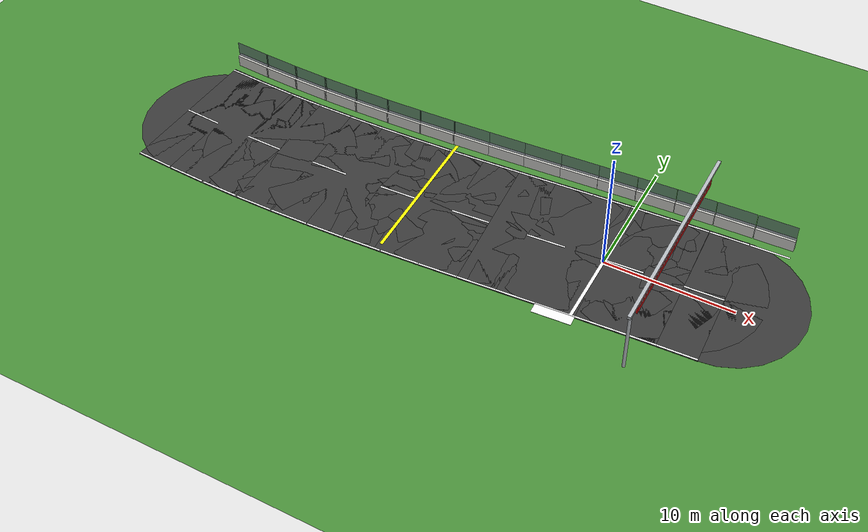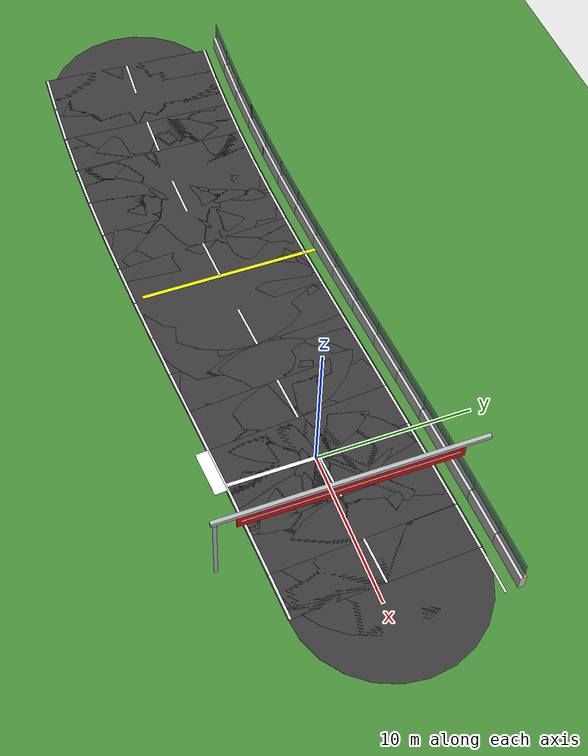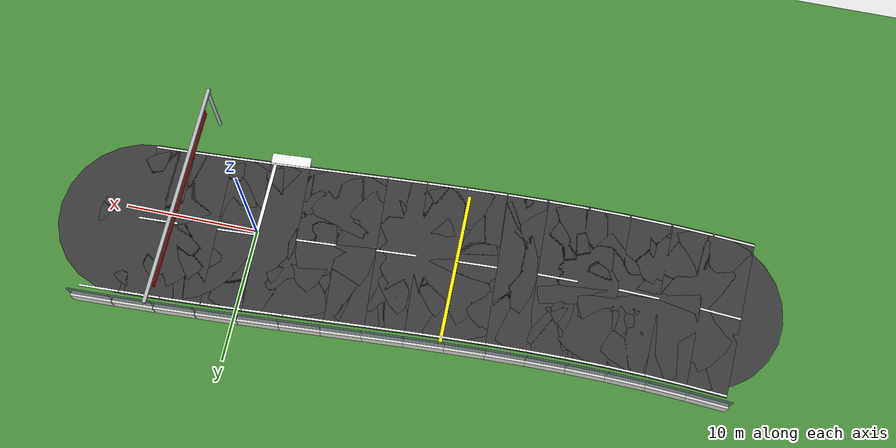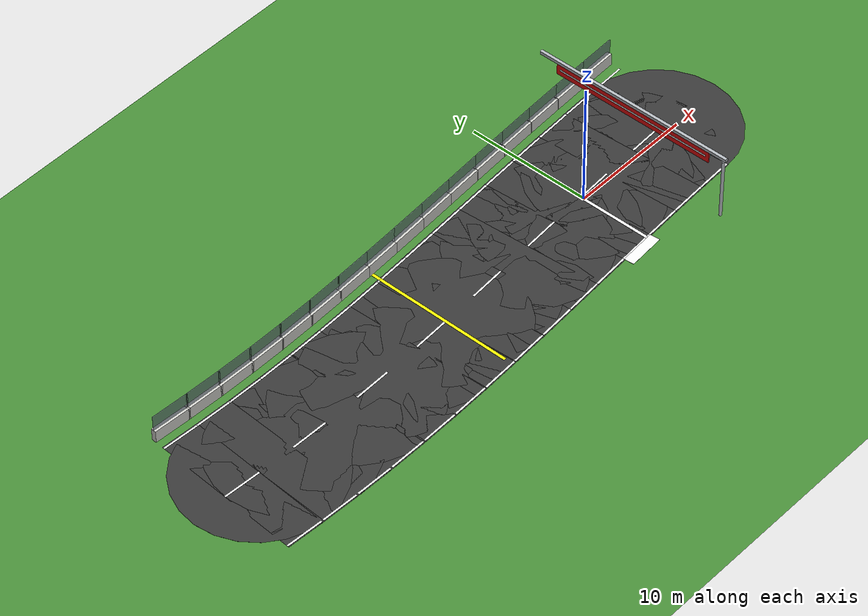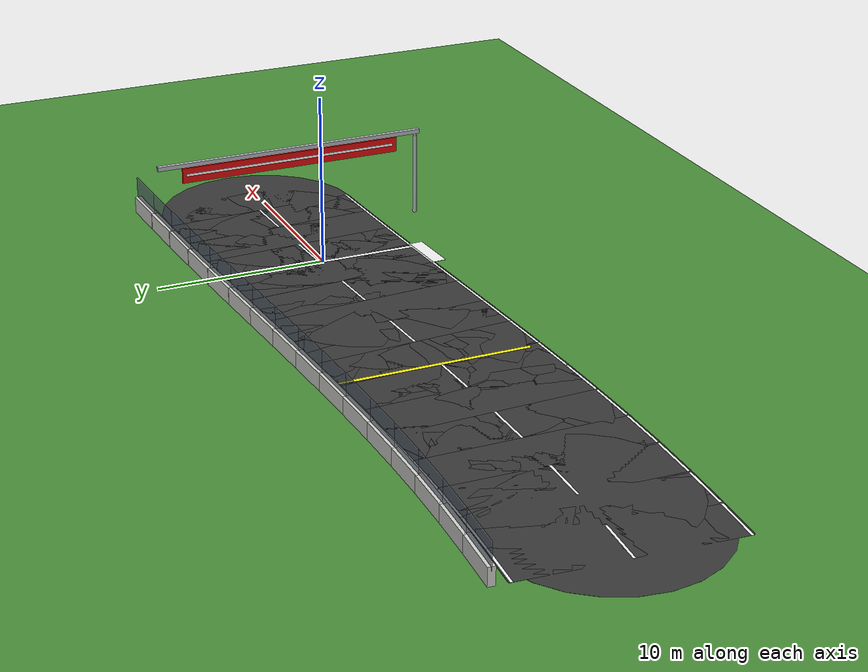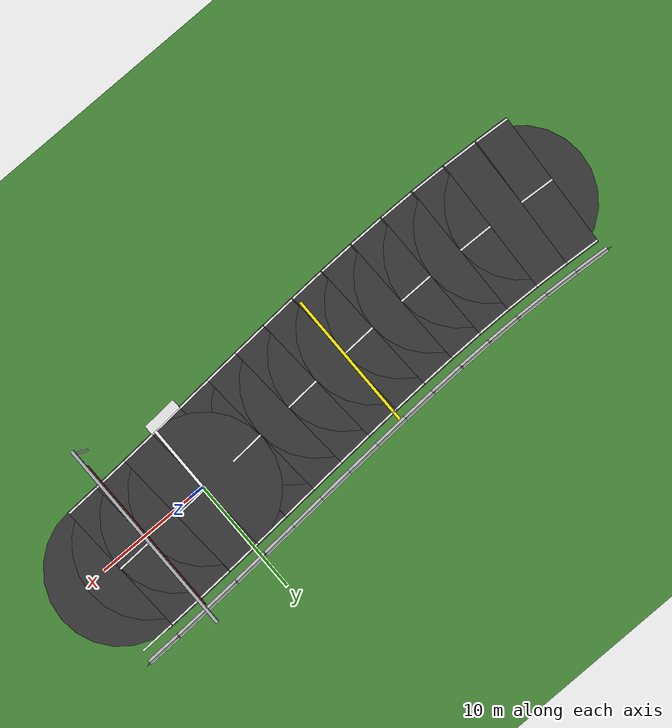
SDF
<sdf version="1.6">
 <world name="sem_silesia_ring_2026">
  <model name="ground_plane">
   <static>true</static>
   <link name="link">
    <collision name="collision">
     <geometry><plane><normal>0 0 1</normal><size>1200 1200</size></plane></geometry>
     <surface><friction><ode><mu>0.6</mu><mu2>0.6</mu2></ode></friction></surface>
    </collision>
    <visual name="visual">
     <geometry><plane><normal>0 0 1</normal><size>1200 1200</size></plane></geometry>
     <material><ambient>0.28 0.55 0.22 1</ambient><diffuse>0.28 0.55 0.22 1</diffuse></material>
    </visual>
   </link>
  </model>
  <model name="road_s0">
   <static>true</static>
   <pose>1.4680 0.3103 0.0030 0 0 0.0594</pose>
   <link name="link">
    <visual name="v">
     <geometry><box><size>3.0025 12.0000 0.0060</size></box></geometry>
     <material><ambient>0.22 0.22 0.22 1</ambient><diffuse>0.22 0.22 0.22 1</diffuse></material>
    </visual>
    <collision name="c">
     <geometry><box><size>3.0025 12.0000 0.0060</size></box></geometry>
     <surface><friction><ode><mu>0.9</mu><mu2>0.9</mu2></ode></friction></surface>
    </collision>
   </link>
  </model>
  <model name="road_jnt0">
   <static>true</static>
   <pose>-0.0306 0.2212 0.0030 0 0 0</pose>
   <link name="link">
    <visual name="v">
     <geometry><cylinder><radius>6.0000</radius><length>0.0060</length></cylinder></geometry>
     <material><ambient>0.22 0.22 0.22 1</ambient><diffuse>0.22 0.22 0.22 1</diffuse></material>
    </visual>
    <collision name="c">
     <geometry><cylinder><radius>6.0000</radius><length>0.0060</length></cylinder></geometry>
     <surface><friction><ode><mu>0.9</mu><mu2>0.9</mu2></ode></friction></surface>
    </collision>
   </link>
  </model>
  <model name="wl_L_s0">
   <static>true</static>
   <pose>1.1208 6.1500 0.0070 0 0 0.0594</pose>
   <link name="link">
    <visual name="v">
     <geometry><box><size>3.0025 0.1500 0.0080</size></box></geometry>
     <material><ambient>0.95 0.95 0.95 1</ambient><diffuse>0.95 0.95 0.95 1</diffuse></material>
    </visual>
   </link>
  </model>
  <model name="wl_R_s0">
   <static>true</static>
   <pose>1.8152 -5.5294 0.0070 0 0 0.0594</pose>
   <link name="link">
    <visual name="v">
     <geometry><box><size>3.0025 0.1500 0.0080</size></box></geometry>
     <material><ambient>0.95 0.95 0.95 1</ambient><diffuse>0.95 0.95 0.95 1</diffuse></material>
    </visual>
   </link>
  </model>
  <model name="cd_s0">
   <static>true</static>
   <pose>1.4680 0.3103 0.0070 0 0 0.0594</pose>
   <link name="link">
    <visual name="v">
     <geometry><box><size>3.0025 0.1500 0.0080</size></box></geometry>
     <material><ambient>0.95 0.95 0.95 1</ambient><diffuse>0.95 0.95 0.95 1</diffuse></material>
    </visual>
   </link>
  </model>
  <model name="road_s1">
   <static>true</static>
   <pose>4.4658 0.4782 0.0030 0 0 0.0526</pose>
   <link name="link">
    <visual name="v">
     <geometry><box><size>3.0025 12.0000 0.0060</size></box></geometry>
     <material><ambient>0.22 0.22 0.22 1</ambient><diffuse>0.22 0.22 0.22 1</diffuse></material>
    </visual>
    <collision name="c">
     <geometry><box><size>3.0025 12.0000 0.0060</size></box></geometry>
     <surface><friction><ode><mu>0.9</mu><mu2>0.9</mu2></ode></friction></surface>
    </collision>
   </link>
  </model>
  <model name="road_jnt1">
   <static>true</static>
   <pose>2.9666 0.3994 0.0030 0 0 0</pose>
   <link name="link">
    <visual name="v">
     <geometry><cylinder><radius>6.0000</radius><length>0.0060</length></cylinder></geometry>
     <material><ambient>0.22 0.22 0.22 1</ambient><diffuse>0.22 0.22 0.22 1</diffuse></material>
    </visual>
    <collision name="c">
     <geometry><cylinder><radius>6.0000</radius><length>0.0060</length></cylinder></geometry>
     <surface><friction><ode><mu>0.9</mu><mu2>0.9</mu2></ode></friction></surface>
    </collision>
   </link>
  </model>
  <model name="wl_L_s1">
   <static>true</static>
   <pose>4.1585 6.3202 0.0070 0 0 0.0526</pose>
   <link name="link">
    <visual name="v">
     <geometry><box><size>3.0025 0.1500 0.0080</size></box></geometry>
     <material><ambient>0.95 0.95 0.95 1</ambient><diffuse>0.95 0.95 0.95 1</diffuse></material>
    </visual>
   </link>
  </model>
  <model name="wl_R_s1">
   <static>true</static>
   <pose>4.7732 -5.3637 0.0070 0 0 0.0526</pose>
   <link name="link">
    <visual name="v">
     <geometry><box><size>3.0025 0.1500 0.0080</size></box></geometry>
     <material><ambient>0.95 0.95 0.95 1</ambient><diffuse>0.95 0.95 0.95 1</diffuse></material>
    </visual>
   </link>
  </model>
  <model name="road_s2">
   <static>true</static>
   <pose>7.4648 0.6246 0.0030 0 0 0.0450</pose>
   <link name="link">
    <visual name="v">
     <geometry><box><size>3.0025 12.0000 0.0060</size></box></geometry>
     <material><ambient>0.22 0.22 0.22 1</ambient><diffuse>0.22 0.22 0.22 1</diffuse></material>
    </visual>
    <collision name="c">
     <geometry><box><size>3.0025 12.0000 0.0060</size></box></geometry>
     <surface><friction><ode><mu>0.9</mu><mu2>0.9</mu2></ode></friction></surface>
    </collision>
   </link>
  </model>
  <model name="road_jnt2">
   <static>true</static>
   <pose>5.9650 0.5571 0.0030 0 0 0</pose>
   <link name="link">
    <visual name="v">
     <geometry><cylinder><radius>6.0000</radius><length>0.0060</length></cylinder></geometry>
     <material><ambient>0.22 0.22 0.22 1</ambient><diffuse>0.22 0.22 0.22 1</diffuse></material>
    </visual>
    <collision name="c">
     <geometry><cylinder><radius>6.0000</radius><length>0.0060</length></cylinder></geometry>
     <surface><friction><ode><mu>0.9</mu><mu2>0.9</mu2></ode></friction></surface>
    </collision>
   </link>
  </model>
  <model name="wl_L_s2">
   <static>true</static>
   <pose>7.2018 6.4687 0.0070 0 0 0.0450</pose>
   <link name="link">
    <visual name="v">
     <geometry><box><size>3.0025 0.1500 0.0080</size></box></geometry>
     <material><ambient>0.95 0.95 0.95 1</ambient><diffuse>0.95 0.95 0.95 1</diffuse></material>
    </visual>
   </link>
  </model>
  <model name="wl_R_s2">
   <static>true</static>
   <pose>7.7277 -5.2195 0.0070 0 0 0.0450</pose>
   <link name="link">
    <visual name="v">
     <geometry><box><size>3.0025 0.1500 0.0080</size></box></geometry>
     <material><ambient>0.95 0.95 0.95 1</ambient><diffuse>0.95 0.95 0.95 1</diffuse></material>
    </visual>
   </link>
  </model>
  <model name="cd_s2">
   <static>true</static>
   <pose>7.4648 0.6246 0.0070 0 0 0.0450</pose>
   <link name="link">
    <visual name="v">
     <geometry><box><size>3.0025 0.1500 0.0080</size></box></geometry>
     <material><ambient>0.95 0.95 0.95 1</ambient><diffuse>0.95 0.95 0.95 1</diffuse></material>
    </visual>
   </link>
  </model>
  <model name="road_jnt3">
   <static>true</static>
   <pose>8.9645 0.6921 0.0030 0 0 0</pose>
   <link name="link">
    <visual name="v">
     <geometry><cylinder><radius>6.0000</radius><length>0.0060</length></cylinder></geometry>
     <material><ambient>0.22 0.22 0.22 1</ambient><diffuse>0.22 0.22 0.22 1</diffuse></material>
    </visual>
    <collision name="c">
     <geometry><cylinder><radius>6.0000</radius><length>0.0060</length></cylinder></geometry>
     <surface><friction><ode><mu>0.9</mu><mu2>0.9</mu2></ode></friction></surface>
    </collision>
   </link>
  </model>
  <model name="wl_L_s3">
   <static>true</static>
   <pose>10.2509 6.5931 0.0070 0 0 0.0366</pose>
   <link name="link">
    <visual name="v">
     <geometry><box><size>3.0025 0.1500 0.0080</size></box></geometry>
     <material><ambient>0.95 0.95 0.95 1</ambient><diffuse>0.95 0.95 0.95 1</diffuse></material>
    </visual>
   </link>
  </model>
  <model name="road_s428">
   <static>true</static>
   <pose>-34.5154 -0.7062 0.0030 0 0 -0.0658</pose>
   <link name="link">
    <visual name="v">
     <geometry><box><size>3.0025 12.0000 0.0060</size></box></geometry>
     <material><ambient>0.22 0.22 0.22 1</ambient><diffuse>0.22 0.22 0.22 1</diffuse></material>
    </visual>
    <collision name="c">
     <geometry><box><size>3.0025 12.0000 0.0060</size></box></geometry>
     <surface><friction><ode><mu>0.9</mu><mu2>0.9</mu2></ode></friction></surface>
    </collision>
   </link>
  </model>
  <model name="wl_L_s428">
   <static>true</static>
   <pose>-34.1307 5.1311 0.0070 0 0 -0.0658</pose>
   <link name="link">
    <visual name="v">
     <geometry><box><size>3.0025 0.1500 0.0080</size></box></geometry>
     <material><ambient>0.95 0.95 0.95 1</ambient><diffuse>0.95 0.95 0.95 1</diffuse></material>
    </visual>
   </link>
  </model>
  <model name="wl_R_s428">
   <static>true</static>
   <pose>-34.9000 -6.5436 0.0070 0 0 -0.0658</pose>
   <link name="link">
    <visual name="v">
     <geometry><box><size>3.0025 0.1500 0.0080</size></box></geometry>
     <material><ambient>0.95 0.95 0.95 1</ambient><diffuse>0.95 0.95 0.95 1</diffuse></material>
    </visual>
   </link>
  </model>
  <model name="cd_s428">
   <static>true</static>
   <pose>-34.5154 -0.7062 0.0070 0 0 -0.0658</pose>
   <link name="link">
    <visual name="v">
     <geometry><box><size>3.0025 0.1500 0.0080</size></box></geometry>
     <material><ambient>0.95 0.95 0.95 1</ambient><diffuse>0.95 0.95 0.95 1</diffuse></material>
    </visual>
   </link>
  </model>
  <model name="road_s429">
   <static>true</static>
   <pose>-31.5178 -0.8765 0.0030 0 0 -0.0477</pose>
   <link name="link">
    <visual name="v">
     <geometry><box><size>3.0025 12.0000 0.0060</size></box></geometry>
     <material><ambient>0.22 0.22 0.22 1</ambient><diffuse>0.22 0.22 0.22 1</diffuse></material>
    </visual>
    <collision name="c">
     <geometry><box><size>3.0025 12.0000 0.0060</size></box></geometry>
     <surface><friction><ode><mu>0.9</mu><mu2>0.9</mu2></ode></friction></surface>
    </collision>
   </link>
  </model>
  <model name="road_jnt429">
   <static>true</static>
   <pose>-33.0174 -0.8050 0.0030 0 0 0</pose>
   <link name="link">
    <visual name="v">
     <geometry><cylinder><radius>6.0000</radius><length>0.0060</length></cylinder></geometry>
     <material><ambient>0.22 0.22 0.22 1</ambient><diffuse>0.22 0.22 0.22 1</diffuse></material>
    </visual>
    <collision name="c">
     <geometry><cylinder><radius>6.0000</radius><length>0.0060</length></cylinder></geometry>
     <surface><friction><ode><mu>0.9</mu><mu2>0.9</mu2></ode></friction></surface>
    </collision>
   </link>
  </model>
  <model name="wl_L_s429">
   <static>true</static>
   <pose>-31.2392 4.9669 0.0070 0 0 -0.0477</pose>
   <link name="link">
    <visual name="v">
     <geometry><box><size>3.0025 0.1500 0.0080</size></box></geometry>
     <material><ambient>0.95 0.95 0.95 1</ambient><diffuse>0.95 0.95 0.95 1</diffuse></material>
    </visual>
   </link>
  </model>
  <model name="wl_R_s429">
   <static>true</static>
   <pose>-31.7965 -6.7198 0.0070 0 0 -0.0477</pose>
   <link name="link">
    <visual name="v">
     <geometry><box><size>3.0025 0.1500 0.0080</size></box></geometry>
     <material><ambient>0.95 0.95 0.95 1</ambient><diffuse>0.95 0.95 0.95 1</diffuse></material>
    </visual>
   </link>
  </model>
  <model name="road_s430">
   <static>true</static>
   <pose>-28.5176 -0.9865 0.0030 0 0 -0.0257</pose>
   <link name="link">
    <visual name="v">
     <geometry><box><size>3.0025 12.0000 0.0060</size></box></geometry>
     <material><ambient>0.22 0.22 0.22 1</ambient><diffuse>0.22 0.22 0.22 1</diffuse></material>
    </visual>
    <collision name="c">
     <geometry><box><size>3.0025 12.0000 0.0060</size></box></geometry>
     <surface><friction><ode><mu>0.9</mu><mu2>0.9</mu2></ode></friction></surface>
    </collision>
   </link>
  </model>
  <model name="road_jnt430">
   <static>true</static>
   <pose>-30.0183 -0.9480 0.0030 0 0 0</pose>
   <link name="link">
    <visual name="v">
     <geometry><cylinder><radius>6.0000</radius><length>0.0060</length></cylinder></geometry>
     <material><ambient>0.22 0.22 0.22 1</ambient><diffuse>0.22 0.22 0.22 1</diffuse></material>
    </visual>
    <collision name="c">
     <geometry><cylinder><radius>6.0000</radius><length>0.0060</length></cylinder></geometry>
     <surface><friction><ode><mu>0.9</mu><mu2>0.9</mu2></ode></friction></surface>
    </collision>
   </link>
  </model>
  <model name="wl_L_s430">
   <static>true</static>
   <pose>-28.3675 4.8616 0.0070 0 0 -0.0257</pose>
   <link name="link">
    <visual name="v">
     <geometry><box><size>3.0025 0.1500 0.0080</size></box></geometry>
     <material><ambient>0.95 0.95 0.95 1</ambient><diffuse>0.95 0.95 0.95 1</diffuse></material>
    </visual>
   </link>
  </model>
  <model name="wl_R_s430">
   <static>true</static>
   <pose>-28.6677 -6.8346 0.0070 0 0 -0.0257</pose>
   <link name="link">
    <visual name="v">
     <geometry><box><size>3.0025 0.1500 0.0080</size></box></geometry>
     <material><ambient>0.95 0.95 0.95 1</ambient><diffuse>0.95 0.95 0.95 1</diffuse></material>
    </visual>
   </link>
  </model>
  <model name="cd_s430">
   <static>true</static>
   <pose>-28.5176 -0.9865 0.0070 0 0 -0.0257</pose>
   <link name="link">
    <visual name="v">
     <geometry><box><size>3.0025 0.1500 0.0080</size></box></geometry>
     <material><ambient>0.95 0.95 0.95 1</ambient><diffuse>0.95 0.95 0.95 1</diffuse></material>
    </visual>
   </link>
  </model>
  <model name="road_s431">
   <static>true</static>
   <pose>-25.5156 -1.0294 0.0030 0 0 -0.0029</pose>
   <link name="link">
    <visual name="v">
     <geometry><box><size>3.0025 12.0000 0.0060</size></box></geometry>
     <material><ambient>0.22 0.22 0.22 1</ambient><diffuse>0.22 0.22 0.22 1</diffuse></material>
    </visual>
    <collision name="c">
     <geometry><box><size>3.0025 12.0000 0.0060</size></box></geometry>
     <surface><friction><ode><mu>0.9</mu><mu2>0.9</mu2></ode></friction></surface>
    </collision>
   </link>
  </model>
  <model name="road_jnt431">
   <static>true</static>
   <pose>-27.0168 -1.0250 0.0030 0 0 0</pose>
   <link name="link">
    <visual name="v">
     <geometry><cylinder><radius>6.0000</radius><length>0.0060</length></cylinder></geometry>
     <material><ambient>0.22 0.22 0.22 1</ambient><diffuse>0.22 0.22 0.22 1</diffuse></material>
    </visual>
    <collision name="c">
     <geometry><cylinder><radius>6.0000</radius><length>0.0060</length></cylinder></geometry>
     <surface><friction><ode><mu>0.9</mu><mu2>0.9</mu2></ode></friction></surface>
    </collision>
   </link>
  </model>
  <model name="wl_L_s431">
   <static>true</static>
   <pose>-25.4985 4.8206 0.0070 0 0 -0.0029</pose>
   <link name="link">
    <visual name="v">
     <geometry><box><size>3.0025 0.1500 0.0080</size></box></geometry>
     <material><ambient>0.95 0.95 0.95 1</ambient><diffuse>0.95 0.95 0.95 1</diffuse></material>
    </visual>
   </link>
  </model>
  <model name="wl_R_s431">
   <static>true</static>
   <pose>-25.5327 -6.8794 0.0070 0 0 -0.0029</pose>
   <link name="link">
    <visual name="v">
     <geometry><box><size>3.0025 0.1500 0.0080</size></box></geometry>
     <material><ambient>0.95 0.95 0.95 1</ambient><diffuse>0.95 0.95 0.95 1</diffuse></material>
    </visual>
   </link>
  </model>
  <model name="road_s432">
   <static>true</static>
   <pose>-22.5133 -1.0085 0.0030 0 0 0.0169</pose>
   <link name="link">
    <visual name="v">
     <geometry><box><size>3.0025 12.0000 0.0060</size></box></geometry>
     <material><ambient>0.22 0.22 0.22 1</ambient><diffuse>0.22 0.22 0.22 1</diffuse></material>
    </visual>
    <collision name="c">
     <geometry><box><size>3.0025 12.0000 0.0060</size></box></geometry>
     <surface><friction><ode><mu>0.9</mu><mu2>0.9</mu2></ode></friction></surface>
    </collision>
   </link>
  </model>
  <model name="road_jnt432">
   <static>true</static>
   <pose>-24.0144 -1.0338 0.0030 0 0 0</pose>
   <link name="link">
    <visual name="v">
     <geometry><cylinder><radius>6.0000</radius><length>0.0060</length></cylinder></geometry>
     <material><ambient>0.22 0.22 0.22 1</ambient><diffuse>0.22 0.22 0.22 1</diffuse></material>
    </visual>
    <collision name="c">
     <geometry><cylinder><radius>6.0000</radius><length>0.0060</length></cylinder></geometry>
     <surface><friction><ode><mu>0.9</mu><mu2>0.9</mu2></ode></friction></surface>
    </collision>
   </link>
  </model>
  <model name="wl_L_s432">
   <static>true</static>
   <pose>-22.6120 4.8407 0.0070 0 0 0.0169</pose>
   <link name="link">
    <visual name="v">
     <geometry><box><size>3.0025 0.1500 0.0080</size></box></geometry>
     <material><ambient>0.95 0.95 0.95 1</ambient><diffuse>0.95 0.95 0.95 1</diffuse></material>
    </visual>
   </link>
  </model>
  <model name="wl_R_s432">
   <static>true</static>
   <pose>-22.4146 -6.8576 0.0070 0 0 0.0169</pose>
   <link name="link">
    <visual name="v">
     <geometry><box><size>3.0025 0.1500 0.0080</size></box></geometry>
     <material><ambient>0.95 0.95 0.95 1</ambient><diffuse>0.95 0.95 0.95 1</diffuse></material>
    </visual>
   </link>
  </model>
  <model name="cd_s432">
   <static>true</static>
   <pose>-22.5133 -1.0085 0.0070 0 0 0.0169</pose>
   <link name="link">
    <visual name="v">
     <geometry><box><size>3.0025 0.1500 0.0080</size></box></geometry>
     <material><ambient>0.95 0.95 0.95 1</ambient><diffuse>0.95 0.95 0.95 1</diffuse></material>
    </visual>
   </link>
  </model>
  <model name="road_s433">
   <static>true</static>
   <pose>-19.5119 -0.9329 0.0030 0 0 0.0335</pose>
   <link name="link">
    <visual name="v">
     <geometry><box><size>3.0025 12.0000 0.0060</size></box></geometry>
     <material><ambient>0.22 0.22 0.22 1</ambient><diffuse>0.22 0.22 0.22 1</diffuse></material>
    </visual>
    <collision name="c">
     <geometry><box><size>3.0025 12.0000 0.0060</size></box></geometry>
     <surface><friction><ode><mu>0.9</mu><mu2>0.9</mu2></ode></friction></surface>
    </collision>
   </link>
  </model>
  <model name="road_jnt433">
   <static>true</static>
   <pose>-21.0123 -0.9831 0.0030 0 0 0</pose>
   <link name="link">
    <visual name="v">
     <geometry><cylinder><radius>6.0000</radius><length>0.0060</length></cylinder></geometry>
     <material><ambient>0.22 0.22 0.22 1</ambient><diffuse>0.22 0.22 0.22 1</diffuse></material>
    </visual>
    <collision name="c">
     <geometry><cylinder><radius>6.0000</radius><length>0.0060</length></cylinder></geometry>
     <surface><friction><ode><mu>0.9</mu><mu2>0.9</mu2></ode></friction></surface>
    </collision>
   </link>
  </model>
  <model name="wl_L_s433">
   <static>true</static>
   <pose>-19.7076 4.9138 0.0070 0 0 0.0335</pose>
   <link name="link">
    <visual name="v">
     <geometry><box><size>3.0025 0.1500 0.0080</size></box></geometry>
     <material><ambient>0.95 0.95 0.95 1</ambient><diffuse>0.95 0.95 0.95 1</diffuse></material>
    </visual>
   </link>
  </model>
  <model name="wl_R_s433">
   <static>true</static>
   <pose>-19.3161 -6.7796 0.0070 0 0 0.0335</pose>
   <link name="link">
    <visual name="v">
     <geometry><box><size>3.0025 0.1500 0.0080</size></box></geometry>
     <material><ambient>0.95 0.95 0.95 1</ambient><diffuse>0.95 0.95 0.95 1</diffuse></material>
    </visual>
   </link>
  </model>
  <model name="road_s434">
   <static>true</static>
   <pose>-16.5118 -0.8124 0.0030 0 0 0.0468</pose>
   <link name="link">
    <visual name="v">
     <geometry><box><size>3.0025 12.0000 0.0060</size></box></geometry>
     <material><ambient>0.22 0.22 0.22 1</ambient><diffuse>0.22 0.22 0.22 1</diffuse></material>
    </visual>
    <collision name="c">
     <geometry><box><size>3.0025 12.0000 0.0060</size></box></geometry>
     <surface><friction><ode><mu>0.9</mu><mu2>0.9</mu2></ode></friction></surface>
    </collision>
   </link>
  </model>
  <model name="road_jnt434">
   <static>true</static>
   <pose>-18.0115 -0.8827 0.0030 0 0 0</pose>
   <link name="link">
    <visual name="v">
     <geometry><cylinder><radius>6.0000</radius><length>0.0060</length></cylinder></geometry>
     <material><ambient>0.22 0.22 0.22 1</ambient><diffuse>0.22 0.22 0.22 1</diffuse></material>
    </visual>
    <collision name="c">
     <geometry><cylinder><radius>6.0000</radius><length>0.0060</length></cylinder></geometry>
     <surface><friction><ode><mu>0.9</mu><mu2>0.9</mu2></ode></friction></surface>
    </collision>
   </link>
  </model>
  <model name="wl_L_s434">
   <static>true</static>
   <pose>-16.7857 5.0312 0.0070 0 0 0.0468</pose>
   <link name="link">
    <visual name="v">
     <geometry><box><size>3.0025 0.1500 0.0080</size></box></geometry>
     <material><ambient>0.95 0.95 0.95 1</ambient><diffuse>0.95 0.95 0.95 1</diffuse></material>
    </visual>
   </link>
  </model>
  <model name="wl_R_s434">
   <static>true</static>
   <pose>-16.2380 -6.6560 0.0070 0 0 0.0468</pose>
   <link name="link">
    <visual name="v">
     <geometry><box><size>3.0025 0.1500 0.0080</size></box></geometry>
     <material><ambient>0.95 0.95 0.95 1</ambient><diffuse>0.95 0.95 0.95 1</diffuse></material>
    </visual>
   </link>
  </model>
  <model name="cd_s434">
   <static>true</static>
   <pose>-16.5118 -0.8124 0.0070 0 0 0.0468</pose>
   <link name="link">
    <visual name="v">
     <geometry><box><size>3.0025 0.1500 0.0080</size></box></geometry>
     <material><ambient>0.95 0.95 0.95 1</ambient><diffuse>0.95 0.95 0.95 1</diffuse></material>
    </visual>
   </link>
  </model>
  <model name="road_s435">
   <static>true</static>
   <pose>-13.5134 -0.6567 0.0030 0 0 0.0569</pose>
   <link name="link">
    <visual name="v">
     <geometry><box><size>3.0025 12.0000 0.0060</size></box></geometry>
     <material><ambient>0.22 0.22 0.22 1</ambient><diffuse>0.22 0.22 0.22 1</diffuse></material>
    </visual>
    <collision name="c">
     <geometry><box><size>3.0025 12.0000 0.0060</size></box></geometry>
     <surface><friction><ode><mu>0.9</mu><mu2>0.9</mu2></ode></friction></surface>
    </collision>
   </link>
  </model>
  <model name="road_jnt435">
   <static>true</static>
   <pose>-15.0122 -0.7421 0.0030 0 0 0</pose>
   <link name="link">
    <visual name="v">
     <geometry><cylinder><radius>6.0000</radius><length>0.0060</length></cylinder></geometry>
     <material><ambient>0.22 0.22 0.22 1</ambient><diffuse>0.22 0.22 0.22 1</diffuse></material>
    </visual>
    <collision name="c">
     <geometry><cylinder><radius>6.0000</radius><length>0.0060</length></cylinder></geometry>
     <surface><friction><ode><mu>0.9</mu><mu2>0.9</mu2></ode></friction></surface>
    </collision>
   </link>
  </model>
  <model name="wl_L_s435">
   <static>true</static>
   <pose>-13.8464 5.1838 0.0070 0 0 0.0569</pose>
   <link name="link">
    <visual name="v">
     <geometry><box><size>3.0025 0.1500 0.0080</size></box></geometry>
     <material><ambient>0.95 0.95 0.95 1</ambient><diffuse>0.95 0.95 0.95 1</diffuse></material>
    </visual>
   </link>
  </model>
  <model name="wl_R_s435">
   <static>true</static>
   <pose>-13.1804 -6.4972 0.0070 0 0 0.0569</pose>
   <link name="link">
    <visual name="v">
     <geometry><box><size>3.0025 0.1500 0.0080</size></box></geometry>
     <material><ambient>0.95 0.95 0.95 1</ambient><diffuse>0.95 0.95 0.95 1</diffuse></material>
    </visual>
   </link>
  </model>
  <model name="road_s436">
   <static>true</static>
   <pose>-10.5164 -0.4755 0.0030 0 0 0.0638</pose>
   <link name="link">
    <visual name="v">
     <geometry><box><size>3.0025 12.0000 0.0060</size></box></geometry>
     <material><ambient>0.22 0.22 0.22 1</ambient><diffuse>0.22 0.22 0.22 1</diffuse></material>
    </visual>
    <collision name="c">
     <geometry><box><size>3.0025 12.0000 0.0060</size></box></geometry>
     <surface><friction><ode><mu>0.9</mu><mu2>0.9</mu2></ode></friction></surface>
    </collision>
   </link>
  </model>
  <model name="road_jnt436">
   <static>true</static>
   <pose>-12.0146 -0.5712 0.0030 0 0 0</pose>
   <link name="link">
    <visual name="v">
     <geometry><cylinder><radius>6.0000</radius><length>0.0060</length></cylinder></geometry>
     <material><ambient>0.22 0.22 0.22 1</ambient><diffuse>0.22 0.22 0.22 1</diffuse></material>
    </visual>
    <collision name="c">
     <geometry><cylinder><radius>6.0000</radius><length>0.0060</length></cylinder></geometry>
     <surface><friction><ode><mu>0.9</mu><mu2>0.9</mu2></ode></friction></surface>
    </collision>
   </link>
  </model>
  <model name="wl_L_s436">
   <static>true</static>
   <pose>-10.8894 5.3626 0.0070 0 0 0.0638</pose>
   <link name="link">
    <visual name="v">
     <geometry><box><size>3.0025 0.1500 0.0080</size></box></geometry>
     <material><ambient>0.95 0.95 0.95 1</ambient><diffuse>0.95 0.95 0.95 1</diffuse></material>
    </visual>
   </link>
  </model>
  <model name="wl_R_s436">
   <static>true</static>
   <pose>-10.1433 -6.3136 0.0070 0 0 0.0638</pose>
   <link name="link">
    <visual name="v">
     <geometry><box><size>3.0025 0.1500 0.0080</size></box></geometry>
     <material><ambient>0.95 0.95 0.95 1</ambient><diffuse>0.95 0.95 0.95 1</diffuse></material>
    </visual>
   </link>
  </model>
  <model name="cd_s436">
   <static>true</static>
   <pose>-10.5164 -0.4755 0.0070 0 0 0.0638</pose>
   <link name="link">
    <visual name="v">
     <geometry><box><size>3.0025 0.1500 0.0080</size></box></geometry>
     <material><ambient>0.95 0.95 0.95 1</ambient><diffuse>0.95 0.95 0.95 1</diffuse></material>
    </visual>
   </link>
  </model>
  <model name="road_s437">
   <static>true</static>
   <pose>-7.5203 -0.2786 0.0030 0 0 0.0674</pose>
   <link name="link">
    <visual name="v">
     <geometry><box><size>3.0025 12.0000 0.0060</size></box></geometry>
     <material><ambient>0.22 0.22 0.22 1</ambient><diffuse>0.22 0.22 0.22 1</diffuse></material>
    </visual>
    <collision name="c">
     <geometry><box><size>3.0025 12.0000 0.0060</size></box></geometry>
     <surface><friction><ode><mu>0.9</mu><mu2>0.9</mu2></ode></friction></surface>
    </collision>
   </link>
  </model>
  <model name="road_jnt437">
   <static>true</static>
   <pose>-9.0181 -0.3797 0.0030 0 0 0</pose>
   <link name="link">
    <visual name="v">
     <geometry><cylinder><radius>6.0000</radius><length>0.0060</length></cylinder></geometry>
     <material><ambient>0.22 0.22 0.22 1</ambient><diffuse>0.22 0.22 0.22 1</diffuse></material>
    </visual>
    <collision name="c">
     <geometry><cylinder><radius>6.0000</radius><length>0.0060</length></cylinder></geometry>
     <surface><friction><ode><mu>0.9</mu><mu2>0.9</mu2></ode></friction></surface>
    </collision>
   </link>
  </model>
  <model name="wl_L_s437">
   <static>true</static>
   <pose>-7.9145 5.5581 0.0070 0 0 0.0674</pose>
   <link name="link">
    <visual name="v">
     <geometry><box><size>3.0025 0.1500 0.0080</size></box></geometry>
     <material><ambient>0.95 0.95 0.95 1</ambient><diffuse>0.95 0.95 0.95 1</diffuse></material>
    </visual>
   </link>
  </model>
  <model name="wl_R_s437">
   <static>true</static>
   <pose>-7.1261 -6.1153 0.0070 0 0 0.0674</pose>
   <link name="link">
    <visual name="v">
     <geometry><box><size>3.0025 0.1500 0.0080</size></box></geometry>
     <material><ambient>0.95 0.95 0.95 1</ambient><diffuse>0.95 0.95 0.95 1</diffuse></material>
    </visual>
   </link>
  </model>
  <model name="road_s438">
   <static>true</static>
   <pose>-4.5246 -0.0756 0.0030 0 0 0.0678</pose>
   <link name="link">
    <visual name="v">
     <geometry><box><size>3.0025 12.0000 0.0060</size></box></geometry>
     <material><ambient>0.22 0.22 0.22 1</ambient><diffuse>0.22 0.22 0.22 1</diffuse></material>
    </visual>
    <collision name="c">
     <geometry><box><size>3.0025 12.0000 0.0060</size></box></geometry>
     <surface><friction><ode><mu>0.9</mu><mu2>0.9</mu2></ode></friction></surface>
    </collision>
   </link>
  </model>
  <model name="road_jnt438">
   <static>true</static>
   <pose>-6.0224 -0.1774 0.0030 0 0 0</pose>
   <link name="link">
    <visual name="v">
     <geometry><cylinder><radius>6.0000</radius><length>0.0060</length></cylinder></geometry>
     <material><ambient>0.22 0.22 0.22 1</ambient><diffuse>0.22 0.22 0.22 1</diffuse></material>
    </visual>
    <collision name="c">
     <geometry><cylinder><radius>6.0000</radius><length>0.0060</length></cylinder></geometry>
     <surface><friction><ode><mu>0.9</mu><mu2>0.9</mu2></ode></friction></surface>
    </collision>
   </link>
  </model>
  <model name="wl_L_s438">
   <static>true</static>
   <pose>-4.9212 5.7609 0.0070 0 0 0.0678</pose>
   <link name="link">
    <visual name="v">
     <geometry><box><size>3.0025 0.1500 0.0080</size></box></geometry>
     <material><ambient>0.95 0.95 0.95 1</ambient><diffuse>0.95 0.95 0.95 1</diffuse></material>
    </visual>
   </link>
  </model>
  <model name="wl_R_s438">
   <static>true</static>
   <pose>-4.1281 -5.9122 0.0070 0 0 0.0678</pose>
   <link name="link">
    <visual name="v">
     <geometry><box><size>3.0025 0.1500 0.0080</size></box></geometry>
     <material><ambient>0.95 0.95 0.95 1</ambient><diffuse>0.95 0.95 0.95 1</diffuse></material>
    </visual>
   </link>
  </model>
  <model name="cd_s438">
   <static>true</static>
   <pose>-4.5246 -0.0756 0.0070 0 0 0.0678</pose>
   <link name="link">
    <visual name="v">
     <geometry><box><size>3.0025 0.1500 0.0080</size></box></geometry>
     <material><ambient>0.95 0.95 0.95 1</ambient><diffuse>0.95 0.95 0.95 1</diffuse></material>
    </visual>
   </link>
  </model>
  <model name="road_s439">
   <static>true</static>
   <pose>-1.5287 0.1236 0.0030 0 0 0.0650</pose>
   <link name="link">
    <visual name="v">
     <geometry><box><size>3.0025 12.0000 0.0060</size></box></geometry>
     <material><ambient>0.22 0.22 0.22 1</ambient><diffuse>0.22 0.22 0.22 1</diffuse></material>
    </visual>
    <collision name="c">
     <geometry><box><size>3.0025 12.0000 0.0060</size></box></geometry>
     <surface><friction><ode><mu>0.9</mu><mu2>0.9</mu2></ode></friction></surface>
    </collision>
   </link>
  </model>
  <model name="road_jnt439">
   <static>true</static>
   <pose>-3.0268 0.0261 0.0030 0 0 0</pose>
   <link name="link">
    <visual name="v">
     <geometry><cylinder><radius>6.0000</radius><length>0.0060</length></cylinder></geometry>
     <material><ambient>0.22 0.22 0.22 1</ambient><diffuse>0.22 0.22 0.22 1</diffuse></material>
    </visual>
    <collision name="c">
     <geometry><cylinder><radius>6.0000</radius><length>0.0060</length></cylinder></geometry>
     <surface><friction><ode><mu>0.9</mu><mu2>0.9</mu2></ode></friction></surface>
    </collision>
   </link>
  </model>
  <model name="wl_L_s439">
   <static>true</static>
   <pose>-1.9087 5.9613 0.0070 0 0 0.0650</pose>
   <link name="link">
    <visual name="v">
     <geometry><box><size>3.0025 0.1500 0.0080</size></box></geometry>
     <material><ambient>0.95 0.95 0.95 1</ambient><diffuse>0.95 0.95 0.95 1</diffuse></material>
    </visual>
   </link>
  </model>
  <model name="wl_R_s439">
   <static>true</static>
   <pose>-1.1487 -5.7140 0.0070 0 0 0.0650</pose>
   <link name="link">
    <visual name="v">
     <geometry><box><size>3.0025 0.1500 0.0080</size></box></geometry>
     <material><ambient>0.95 0.95 0.95 1</ambient><diffuse>0.95 0.95 0.95 1</diffuse></material>
    </visual>
   </link>
  </model>
  <model name="kerb_R_439">
   <static>true</static>
   <pose>-1.1194 -6.1630 0.0120 0 0 0.0650</pose>
   <link name="link">
    <visual name="v">
     <geometry><box><size>3.0025 0.8000 0.0160</size></box></geometry>
     <material><ambient>0.95 0.95 0.95 1</ambient><diffuse>0.95 0.95 0.95 1</diffuse></material>
    </visual>
   </link>
  </model>
  <model name="arm_outL_439">
   <static>true</static>
   <pose>-1.9705 6.9093 0.4000 0 0 0.0650</pose>
   <link name="link">
    <visual name="v">
     <geometry><box><size>3.0025 0.2000 0.8000</size></box></geometry>
     <material><ambient>0.75 0.77 0.80 1</ambient><diffuse>0.75 0.77 0.80 1</diffuse></material>
    </visual>
    <collision name="c">
     <geometry><box><size>3.0025 0.2000 0.8000</size></box></geometry>
     <surface><friction><ode><mu>0.8</mu><mu2>0.8</mu2></ode></friction></surface>
    </collision>
   </link>
  </model>
  <model name="pit_wall_0">
   <static>true</static>
   <pose>1.0645 7.0983 0.5000 0 0 0.0594</pose>
   <link name="link">
    <visual name="v">
     <geometry><box><size>3.0025 0.4000 1.0000</size></box></geometry>
     <material><ambient>0.82 0.82 0.80 1</ambient><diffuse>0.82 0.82 0.80 1</diffuse></material>
    </visual>
    <visual name="fence">
     <pose>0 0 1.0 0 0 0</pose>
     <geometry><box><size>3.0025 0.0500 1.5000</size></box></geometry>
     <material><ambient>0.40 0.45 0.50 0.7</ambient><diffuse>0.40 0.45 0.50 0.7</diffuse></material>
    </visual>
    <collision name="c">
     <geometry><box><size>3.0025 0.4000 1.0000</size></box></geometry>
     <surface><friction><ode><mu>0.9</mu><mu2>0.9</mu2></ode></friction></surface>
    </collision>
   </link>
  </model>
  <model name="pit_wall_1">
   <static>true</static>
   <pose>4.1085 7.2688 0.5000 0 0 0.0526</pose>
   <link name="link">
    <visual name="v">
     <geometry><box><size>3.0025 0.4000 1.0000</size></box></geometry>
     <material><ambient>0.82 0.82 0.80 1</ambient><diffuse>0.82 0.82 0.80 1</diffuse></material>
    </visual>
    <visual name="fence">
     <pose>0 0 1.0 0 0 0</pose>
     <geometry><box><size>3.0025 0.0500 1.5000</size></box></geometry>
     <material><ambient>0.40 0.45 0.50 0.7</ambient><diffuse>0.40 0.45 0.50 0.7</diffuse></material>
    </visual>
    <collision name="c">
     <geometry><box><size>3.0025 0.4000 1.0000</size></box></geometry>
     <surface><friction><ode><mu>0.9</mu><mu2>0.9</mu2></ode></friction></surface>
    </collision>
   </link>
  </model>
  <model name="pit_wall_2">
   <static>true</static>
   <pose>7.1591 7.4177 0.5000 0 0 0.0450</pose>
   <link name="link">
    <visual name="v">
     <geometry><box><size>3.0025 0.4000 1.0000</size></box></geometry>
     <material><ambient>0.82 0.82 0.80 1</ambient><diffuse>0.82 0.82 0.80 1</diffuse></material>
    </visual>
    <visual name="fence">
     <pose>0 0 1.0 0 0 0</pose>
     <geometry><box><size>3.0025 0.0500 1.5000</size></box></geometry>
     <material><ambient>0.40 0.45 0.50 0.7</ambient><diffuse>0.40 0.45 0.50 0.7</diffuse></material>
    </visual>
    <collision name="c">
     <geometry><box><size>3.0025 0.4000 1.0000</size></box></geometry>
     <surface><friction><ode><mu>0.9</mu><mu2>0.9</mu2></ode></friction></surface>
    </collision>
   </link>
  </model>
  <model name="pit_wall_3">
   <static>true</static>
   <pose>10.2161 7.5424 0.5000 0 0 0.0366</pose>
   <link name="link">
    <visual name="v">
     <geometry><box><size>3.0025 0.4000 1.0000</size></box></geometry>
     <material><ambient>0.82 0.82 0.80 1</ambient><diffuse>0.82 0.82 0.80 1</diffuse></material>
    </visual>
    <visual name="fence">
     <pose>0 0 1.0 0 0 0</pose>
     <geometry><box><size>3.0025 0.0500 1.5000</size></box></geometry>
     <material><ambient>0.40 0.45 0.50 0.7</ambient><diffuse>0.40 0.45 0.50 0.7</diffuse></material>
    </visual>
    <collision name="c">
     <geometry><box><size>3.0025 0.4000 1.0000</size></box></geometry>
     <surface><friction><ode><mu>0.9</mu><mu2>0.9</mu2></ode></friction></surface>
    </collision>
   </link>
  </model>
  <model name="pit_wall_428">
   <static>true</static>
   <pose>-34.0683 6.0790 0.5000 0 0 -0.0658</pose>
   <link name="link">
    <visual name="v">
     <geometry><box><size>3.0025 0.4000 1.0000</size></box></geometry>
     <material><ambient>0.82 0.82 0.80 1</ambient><diffuse>0.82 0.82 0.80 1</diffuse></material>
    </visual>
    <visual name="fence">
     <pose>0 0 1.0 0 0 0</pose>
     <geometry><box><size>3.0025 0.0500 1.5000</size></box></geometry>
     <material><ambient>0.40 0.45 0.50 0.7</ambient><diffuse>0.40 0.45 0.50 0.7</diffuse></material>
    </visual>
    <collision name="c">
     <geometry><box><size>3.0025 0.4000 1.0000</size></box></geometry>
     <surface><friction><ode><mu>0.9</mu><mu2>0.9</mu2></ode></friction></surface>
    </collision>
   </link>
  </model>
  <model name="pit_wall_429">
   <static>true</static>
   <pose>-31.1939 5.9158 0.5000 0 0 -0.0477</pose>
   <link name="link">
    <visual name="v">
     <geometry><box><size>3.0025 0.4000 1.0000</size></box></geometry>
     <material><ambient>0.82 0.82 0.80 1</ambient><diffuse>0.82 0.82 0.80 1</diffuse></material>
    </visual>
    <visual name="fence">
     <pose>0 0 1.0 0 0 0</pose>
     <geometry><box><size>3.0025 0.0500 1.5000</size></box></geometry>
     <material><ambient>0.40 0.45 0.50 0.7</ambient><diffuse>0.40 0.45 0.50 0.7</diffuse></material>
    </visual>
    <collision name="c">
     <geometry><box><size>3.0025 0.4000 1.0000</size></box></geometry>
     <surface><friction><ode><mu>0.9</mu><mu2>0.9</mu2></ode></friction></surface>
    </collision>
   </link>
  </model>
  <model name="pit_wall_430">
   <static>true</static>
   <pose>-28.3431 5.8113 0.5000 0 0 -0.0257</pose>
   <link name="link">
    <visual name="v">
     <geometry><box><size>3.0025 0.4000 1.0000</size></box></geometry>
     <material><ambient>0.82 0.82 0.80 1</ambient><diffuse>0.82 0.82 0.80 1</diffuse></material>
    </visual>
    <visual name="fence">
     <pose>0 0 1.0 0 0 0</pose>
     <geometry><box><size>3.0025 0.0500 1.5000</size></box></geometry>
     <material><ambient>0.40 0.45 0.50 0.7</ambient><diffuse>0.40 0.45 0.50 0.7</diffuse></material>
    </visual>
    <collision name="c">
     <geometry><box><size>3.0025 0.4000 1.0000</size></box></geometry>
     <surface><friction><ode><mu>0.9</mu><mu2>0.9</mu2></ode></friction></surface>
    </collision>
   </link>
  </model>
  <model name="pit_wall_431">
   <static>true</static>
   <pose>-25.4957 5.7706 0.5000 0 0 -0.0029</pose>
   <link name="link">
    <visual name="v">
     <geometry><box><size>3.0025 0.4000 1.0000</size></box></geometry>
     <material><ambient>0.82 0.82 0.80 1</ambient><diffuse>0.82 0.82 0.80 1</diffuse></material>
    </visual>
    <visual name="fence">
     <pose>0 0 1.0 0 0 0</pose>
     <geometry><box><size>3.0025 0.0500 1.5000</size></box></geometry>
     <material><ambient>0.40 0.45 0.50 0.7</ambient><diffuse>0.40 0.45 0.50 0.7</diffuse></material>
    </visual>
    <collision name="c">
     <geometry><box><size>3.0025 0.4000 1.0000</size></box></geometry>
     <surface><friction><ode><mu>0.9</mu><mu2>0.9</mu2></ode></friction></surface>
    </collision>
   </link>
  </model>
  <model name="pit_wall_432">
   <static>true</static>
   <pose>-22.6280 5.7906 0.5000 0 0 0.0169</pose>
   <link name="link">
    <visual name="v">
     <geometry><box><size>3.0025 0.4000 1.0000</size></box></geometry>
     <material><ambient>0.82 0.82 0.80 1</ambient><diffuse>0.82 0.82 0.80 1</diffuse></material>
    </visual>
    <visual name="fence">
     <pose>0 0 1.0 0 0 0</pose>
     <geometry><box><size>3.0025 0.0500 1.5000</size></box></geometry>
     <material><ambient>0.40 0.45 0.50 0.7</ambient><diffuse>0.40 0.45 0.50 0.7</diffuse></material>
    </visual>
    <collision name="c">
     <geometry><box><size>3.0025 0.4000 1.0000</size></box></geometry>
     <surface><friction><ode><mu>0.9</mu><mu2>0.9</mu2></ode></friction></surface>
    </collision>
   </link>
  </model>
  <model name="pit_wall_433">
   <static>true</static>
   <pose>-19.7394 5.8633 0.5000 0 0 0.0335</pose>
   <link name="link">
    <visual name="v">
     <geometry><box><size>3.0025 0.4000 1.0000</size></box></geometry>
     <material><ambient>0.82 0.82 0.80 1</ambient><diffuse>0.82 0.82 0.80 1</diffuse></material>
    </visual>
    <visual name="fence">
     <pose>0 0 1.0 0 0 0</pose>
     <geometry><box><size>3.0025 0.0500 1.5000</size></box></geometry>
     <material><ambient>0.40 0.45 0.50 0.7</ambient><diffuse>0.40 0.45 0.50 0.7</diffuse></material>
    </visual>
    <collision name="c">
     <geometry><box><size>3.0025 0.4000 1.0000</size></box></geometry>
     <surface><friction><ode><mu>0.9</mu><mu2>0.9</mu2></ode></friction></surface>
    </collision>
   </link>
  </model>
  <model name="pit_wall_434">
   <static>true</static>
   <pose>-16.8302 5.9801 0.5000 0 0 0.0468</pose>
   <link name="link">
    <visual name="v">
     <geometry><box><size>3.0025 0.4000 1.0000</size></box></geometry>
     <material><ambient>0.82 0.82 0.80 1</ambient><diffuse>0.82 0.82 0.80 1</diffuse></material>
    </visual>
    <visual name="fence">
     <pose>0 0 1.0 0 0 0</pose>
     <geometry><box><size>3.0025 0.0500 1.5000</size></box></geometry>
     <material><ambient>0.40 0.45 0.50 0.7</ambient><diffuse>0.40 0.45 0.50 0.7</diffuse></material>
    </visual>
    <collision name="c">
     <geometry><box><size>3.0025 0.4000 1.0000</size></box></geometry>
     <surface><friction><ode><mu>0.9</mu><mu2>0.9</mu2></ode></friction></surface>
    </collision>
   </link>
  </model>
  <model name="pit_wall_435">
   <static>true</static>
   <pose>-13.9004 6.1323 0.5000 0 0 0.0569</pose>
   <link name="link">
    <visual name="v">
     <geometry><box><size>3.0025 0.4000 1.0000</size></box></geometry>
     <material><ambient>0.82 0.82 0.80 1</ambient><diffuse>0.82 0.82 0.80 1</diffuse></material>
    </visual>
    <visual name="fence">
     <pose>0 0 1.0 0 0 0</pose>
     <geometry><box><size>3.0025 0.0500 1.5000</size></box></geometry>
     <material><ambient>0.40 0.45 0.50 0.7</ambient><diffuse>0.40 0.45 0.50 0.7</diffuse></material>
    </visual>
    <collision name="c">
     <geometry><box><size>3.0025 0.4000 1.0000</size></box></geometry>
     <surface><friction><ode><mu>0.9</mu><mu2>0.9</mu2></ode></friction></surface>
    </collision>
   </link>
  </model>
  <model name="pit_wall_436">
   <static>true</static>
   <pose>-10.9500 6.3107 0.5000 0 0 0.0638</pose>
   <link name="link">
    <visual name="v">
     <geometry><box><size>3.0025 0.4000 1.0000</size></box></geometry>
     <material><ambient>0.82 0.82 0.80 1</ambient><diffuse>0.82 0.82 0.80 1</diffuse></material>
    </visual>
    <visual name="fence">
     <pose>0 0 1.0 0 0 0</pose>
     <geometry><box><size>3.0025 0.0500 1.5000</size></box></geometry>
     <material><ambient>0.40 0.45 0.50 0.7</ambient><diffuse>0.40 0.45 0.50 0.7</diffuse></material>
    </visual>
    <collision name="c">
     <geometry><box><size>3.0025 0.4000 1.0000</size></box></geometry>
     <surface><friction><ode><mu>0.9</mu><mu2>0.9</mu2></ode></friction></surface>
    </collision>
   </link>
  </model>
  <model name="pit_wall_437">
   <static>true</static>
   <pose>-7.9785 6.5060 0.5000 0 0 0.0674</pose>
   <link name="link">
    <visual name="v">
     <geometry><box><size>3.0025 0.4000 1.0000</size></box></geometry>
     <material><ambient>0.82 0.82 0.80 1</ambient><diffuse>0.82 0.82 0.80 1</diffuse></material>
    </visual>
    <visual name="fence">
     <pose>0 0 1.0 0 0 0</pose>
     <geometry><box><size>3.0025 0.0500 1.5000</size></box></geometry>
     <material><ambient>0.40 0.45 0.50 0.7</ambient><diffuse>0.40 0.45 0.50 0.7</diffuse></material>
    </visual>
    <collision name="c">
     <geometry><box><size>3.0025 0.4000 1.0000</size></box></geometry>
     <surface><friction><ode><mu>0.9</mu><mu2>0.9</mu2></ode></friction></surface>
    </collision>
   </link>
  </model>
  <model name="pit_wall_438">
   <static>true</static>
   <pose>-4.9855 6.7087 0.5000 0 0 0.0678</pose>
   <link name="link">
    <visual name="v">
     <geometry><box><size>3.0025 0.4000 1.0000</size></box></geometry>
     <material><ambient>0.82 0.82 0.80 1</ambient><diffuse>0.82 0.82 0.80 1</diffuse></material>
    </visual>
    <visual name="fence">
     <pose>0 0 1.0 0 0 0</pose>
     <geometry><box><size>3.0025 0.0500 1.5000</size></box></geometry>
     <material><ambient>0.40 0.45 0.50 0.7</ambient><diffuse>0.40 0.45 0.50 0.7</diffuse></material>
    </visual>
    <collision name="c">
     <geometry><box><size>3.0025 0.4000 1.0000</size></box></geometry>
     <surface><friction><ode><mu>0.9</mu><mu2>0.9</mu2></ode></friction></surface>
    </collision>
   </link>
  </model>
  <model name="pit_wall_439">
   <static>true</static>
   <pose>-1.9705 6.9093 0.5000 0 0 0.0650</pose>
   <link name="link">
    <visual name="v">
     <geometry><box><size>3.0025 0.4000 1.0000</size></box></geometry>
     <material><ambient>0.82 0.82 0.80 1</ambient><diffuse>0.82 0.82 0.80 1</diffuse></material>
    </visual>
    <visual name="fence">
     <pose>0 0 1.0 0 0 0</pose>
     <geometry><box><size>3.0025 0.0500 1.5000</size></box></geometry>
     <material><ambient>0.40 0.45 0.50 0.7</ambient><diffuse>0.40 0.45 0.50 0.7</diffuse></material>
    </visual>
    <collision name="c">
     <geometry><box><size>3.0025 0.4000 1.0000</size></box></geometry>
     <surface><friction><ode><mu>0.9</mu><mu2>0.9</mu2></ode></friction></surface>
    </collision>
   </link>
  </model>
  <model name="start_line">
   <static>true</static>
   <pose>0.0000 0.0000 0.0070 0 0 0.0000</pose>
   <link name="link">
    <visual name="v">
     <geometry><box><size>0.2500 12.0000 0.0080</size></box></geometry>
     <material><ambient>1 1 1 1</ambient><diffuse>1 1 1 1</diffuse></material>
    </visual>
   </link>
  </model>
  <model name="gantry_start_pR">
   <static>true</static>
   <pose>5.0000 -8.0000 2.5000 0 0 0</pose>
   <link name="link">
    <visual name="v">
     <geometry><cylinder><radius>0.1200</radius><length>5.0000</length></cylinder></geometry>
     <material><ambient>0.70 0.72 0.74 1</ambient><diffuse>0.70 0.72 0.74 1</diffuse></material>
    </visual>
    <collision name="c">
     <geometry><cylinder><radius>0.1200</radius><length>5.0000</length></cylinder></geometry>
    </collision>
   </link>
  </model>
  <model name="gantry_start_bar">
   <static>true</static>
   <pose>5.0000 0.0000 5.2500 0 0 0</pose>
   <link name="link">
    <visual name="v">
     <geometry><box><size>0.2500 16.5000 0.2500</size></box></geometry>
     <material><ambient>0.70 0.72 0.74 1</ambient><diffuse>0.70 0.72 0.74 1</diffuse></material>
    </visual>
   </link>
  </model>
  <model name="gantry_start_banner">
   <static>true</static>
   <pose>5.0000 0.0000 4.6000 0 0 0</pose>
   <link name="link">
    <visual name="v">
     <geometry><box><size>0.1200 13.5000 0.9000</size></box></geometry>
     <material><ambient>0.90 0.05 0.05 1</ambient><diffuse>0.90 0.05 0.05 1</diffuse></material>
    </visual>
   </link>
  </model>
  <model name="gantry_start_stripe">
   <static>true</static>
   <pose>5.0000 0.0000 4.6200 0 0 0</pose>
   <link name="link">
    <visual name="v">
     <geometry><box><size>0.1300 13.0000 0.1500</size></box></geometry>
     <material><ambient>1 1 1 1</ambient><diffuse>1 1 1 1</diffuse></material>
    </visual>
   </link>
  </model>
  <model name="finish_line">
   <static>true</static>
   <pose>-15.0000 0.0000 0.0070 0 0 0.0000</pose>
   <link name="link">
    <visual name="v">
     <geometry><box><size>0.2500 12.0000 0.0080</size></box></geometry>
     <material><ambient>1 0.95 0.0 1</ambient><diffuse>1 0.95 0.0 1</diffuse></material>
    </visual>
   </link>
  </model>
 </world>
</sdf>
